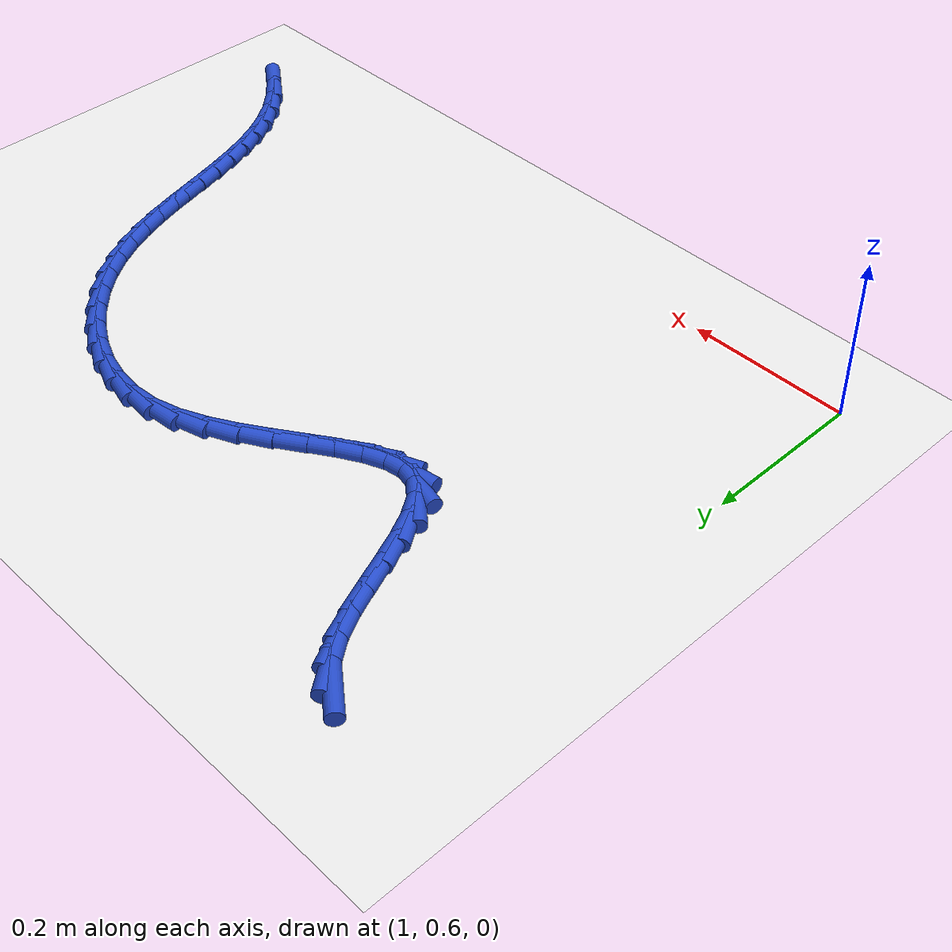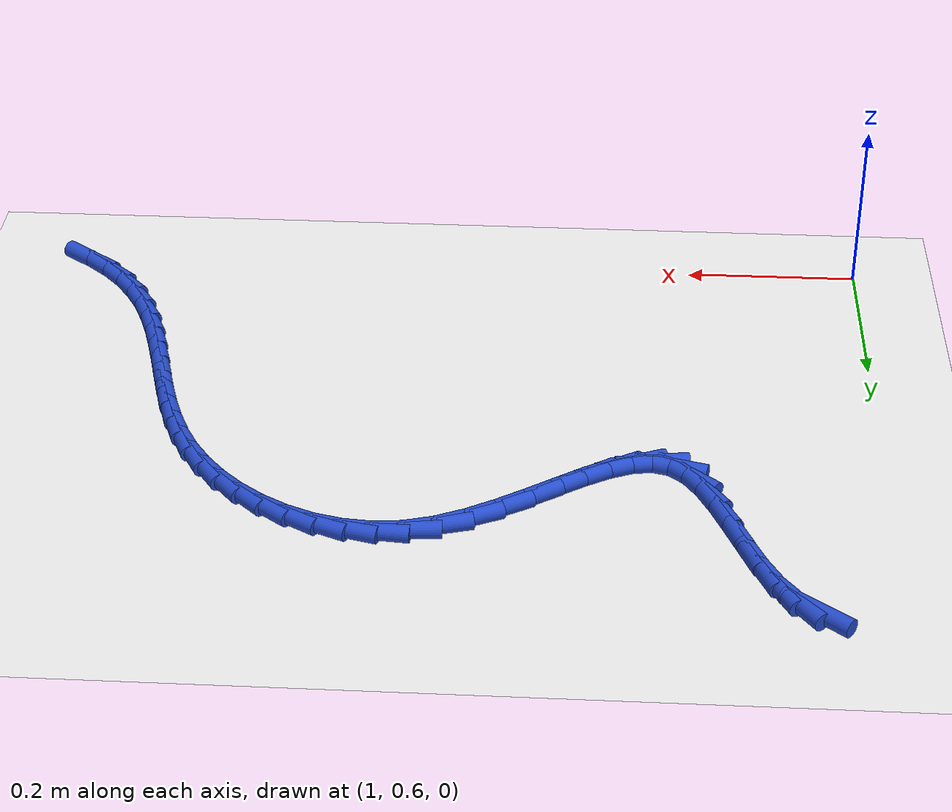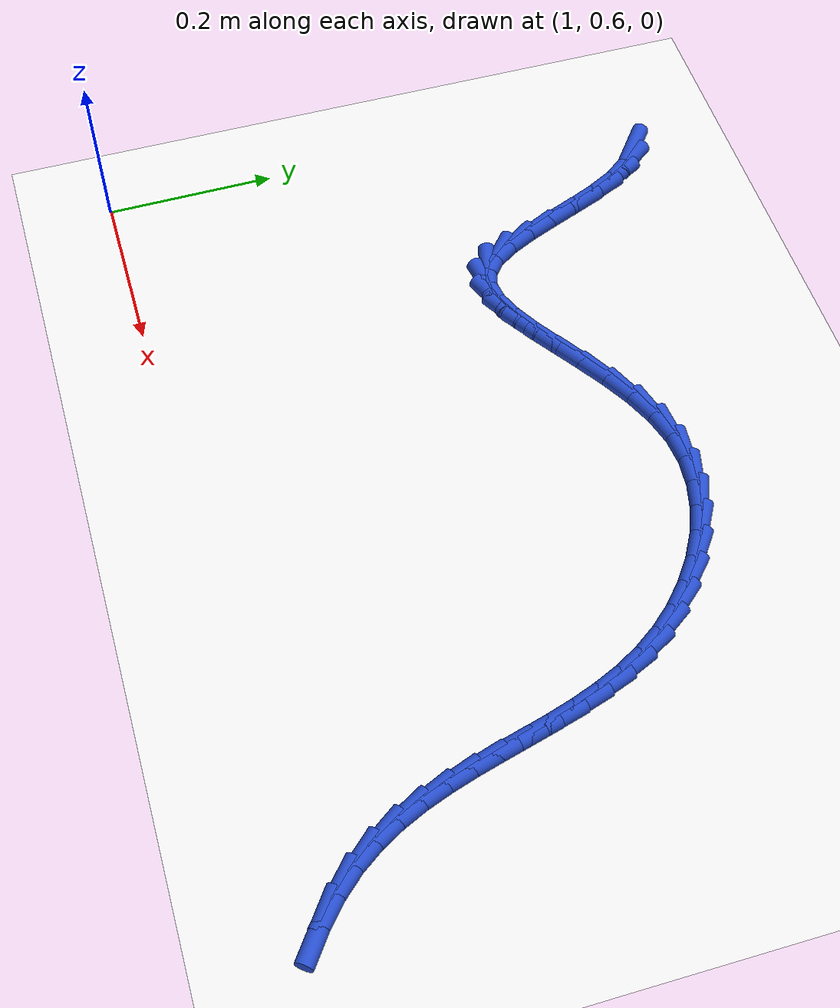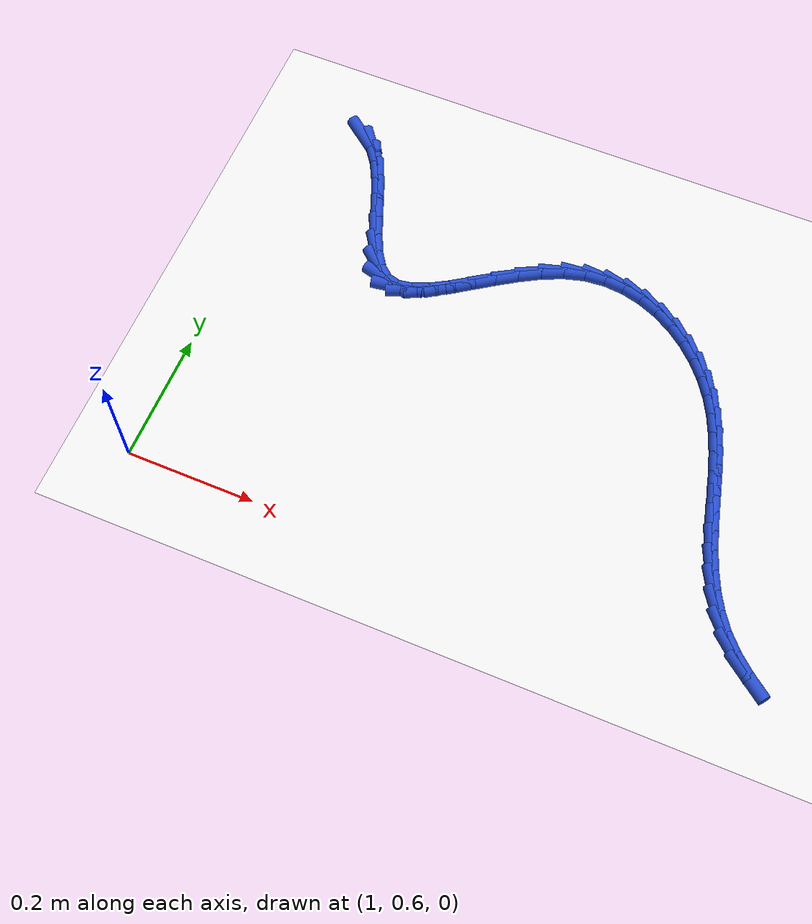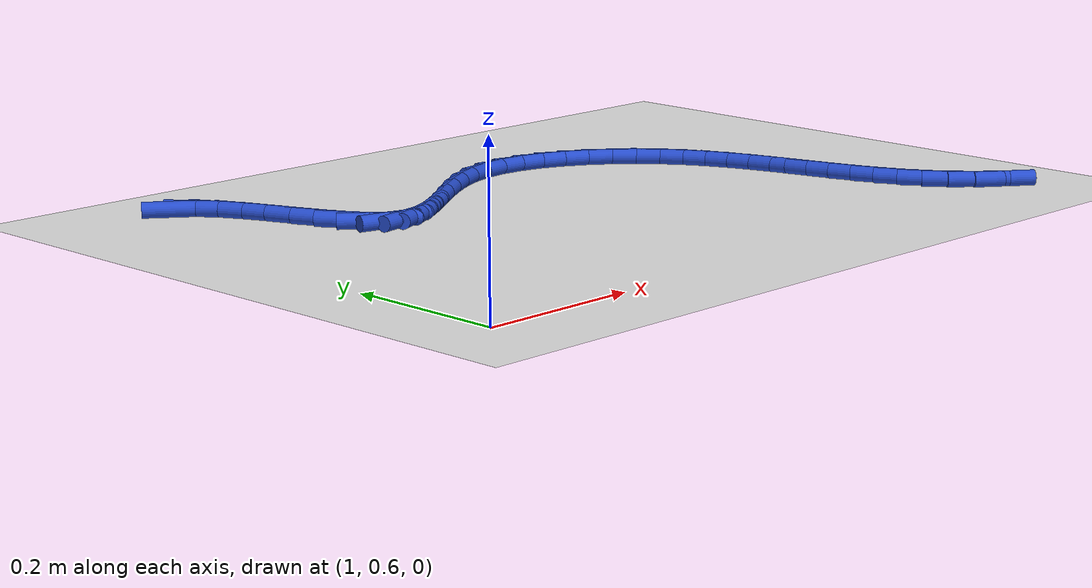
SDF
<sdf version="1.6">
 <world name="default">
  <model name="ground_plane">
   <static>1</static>
   <link name="link">
    <collision name="collision">
     <geometry><plane><normal>0 0 1</normal><size>100 100</size></plane></geometry>
     <surface><friction><ode><mu>100</mu><mu2>50</mu2></ode></friction></surface>
    </collision>
    <visual name="visual">
     <cast_shadows>0</cast_shadows>
     <geometry><plane><normal>0 0 1</normal><size>100 100</size></plane></geometry>
     <material>
      <script><uri>file://media/materials/scripts/gazebo.material</uri><name>Gazebo/WhiteGlow</name></script>
     </material>
    </visual>
   </link>
  </model>
  <model name="line">
   <link name="link_64">
    <pose>1.0909036064680755 1.2418583166483983 0.01 0 1.57 -0.6586504195495102</pose>
    <collision name="collision">
     <geometry><cylinder><radius>0.01</radius><length>0.08</length></cylinder></geometry>
    </collision>
    <visual name="visual">
     <material>
      <script><name>Gazebo/Blue</name><uri>file://media/materials/scripts/gazebo.material</uri></script>
     </material>
     <geometry><cylinder><radius>0.01</radius><length>0.08</length></cylinder></geometry>
    </visual>
   </link>
   <link name="link_65">
    <pose>1.1108935729754001 1.2263871882364186 0.01 0 1.57 -0.9339067698570097</pose>
    <collision name="collision">
     <geometry><cylinder><radius>0.01</radius><length>0.08</length></cylinder></geometry>
    </collision>
    <visual name="visual">
     <material>
      <script><name>Gazebo/Blue</name><uri>file://media/materials/scripts/gazebo.material</uri></script>
     </material>
     <geometry><cylinder><radius>0.01</radius><length>0.08</length></cylinder></geometry>
    </visual>
   </link>
   <link name="link_66">
    <pose>1.1281477401653455 1.2030619289553244 0.01 0 1.57 -1.0874279280124797</pose>
    <collision name="collision">
     <geometry><cylinder><radius>0.01</radius><length>0.08</length></cylinder></geometry>
    </collision>
    <visual name="visual">
     <material>
      <script><name>Gazebo/Blue</name><uri>file://media/materials/scripts/gazebo.material</uri></script>
     </material>
     <geometry><cylinder><radius>0.01</radius><length>0.08</length></cylinder></geometry>
    </visual>
   </link>
   <link name="link_67">
    <pose>1.1433403215445055 1.174118151079531 0.01 0 1.57 -1.1662053593688466</pose>
    <collision name="collision">
     <geometry><cylinder><radius>0.01</radius><length>0.08</length></cylinder></geometry>
    </collision>
    <visual name="visual">
     <material>
      <script><name>Gazebo/Blue</name><uri>file://media/materials/scripts/gazebo.material</uri></script>
     </material>
     <geometry><cylinder><radius>0.01</radius><length>0.08</length></cylinder></geometry>
    </visual>
   </link>
   <link name="link_68">
    <pose>1.1571634253390457 1.1418374257889317 0.01 0 1.57 -1.1951793816552505</pose>
    <collision name="collision">
     <geometry><cylinder><radius>0.01</radius><length>0.08</length></cylinder></geometry>
    </collision>
    <visual name="visual">
     <material>
      <script><name>Gazebo/Blue</name><uri>file://media/materials/scripts/gazebo.material</uri></script>
     </material>
     <geometry><cylinder><radius>0.01</radius><length>0.08</length></cylinder></geometry>
    </visual>
   </link>
   <link name="link_69">
    <pose>1.1703091597751303 1.1085013242634187 0.01 0 1.57 -1.181821434320776</pose>
    <collision name="collision">
     <geometry><cylinder><radius>0.01</radius><length>0.08</length></cylinder></geometry>
    </collision>
    <visual name="visual">
     <material>
      <script><name>Gazebo/Blue</name><uri>file://media/materials/scripts/gazebo.material</uri></script>
     </material>
     <geometry><cylinder><radius>0.01</radius><length>0.08</length></cylinder></geometry>
    </visual>
   </link>
   <link name="link_70">
    <pose>1.1834696330789247 1.0763914176828862 0.01 0 1.57 -1.1193541073777358</pose>
    <collision name="collision">
     <geometry><cylinder><radius>0.01</radius><length>0.08</length></cylinder></geometry>
    </collision>
    <visual name="visual">
     <material>
      <script><name>Gazebo/Blue</name><uri>file://media/materials/scripts/gazebo.material</uri></script>
     </material>
     <geometry><cylinder><radius>0.01</radius><length>0.08</length></cylinder></geometry>
    </visual>
   </link>
   <link name="link_71">
    <pose>1.1973369534765932 1.0477892772272264 0.01 0 1.57 -0.9810435060835496</pose>
    <collision name="collision">
     <geometry><cylinder><radius>0.01</radius><length>0.08</length></cylinder></geometry>
    </collision>
    <visual name="visual">
     <material>
      <script><name>Gazebo/Blue</name><uri>file://media/materials/scripts/gazebo.material</uri></script>
     </material>
     <geometry><cylinder><radius>0.01</radius><length>0.08</length></cylinder></geometry>
    </visual>
   </link>
   <link name="link_72">
    <pose>1.212603229194301 1.0249764740763325 0.01 0 1.57 -0.7040978147836128</pose>
    <collision name="collision">
     <geometry><cylinder><radius>0.01</radius><length>0.08</length></cylinder></geometry>
    </collision>
    <visual name="visual">
     <material>
      <script><name>Gazebo/Blue</name><uri>file://media/materials/scripts/gazebo.material</uri></script>
     </material>
     <geometry><cylinder><radius>0.01</radius><length>0.08</length></cylinder></geometry>
    </visual>
   </link>
   <link name="link_73">
    <pose>1.229960568333488 1.0102345788926677 0.01 0 1.57 -0.24901573664078291</pose>
    <collision name="collision">
     <geometry><cylinder><radius>0.01</radius><length>0.08</length></cylinder></geometry>
    </collision>
    <visual name="visual">
     <material>
      <script><name>Gazebo/Blue</name><uri>file://media/materials/scripts/gazebo.material</uri></script>
     </material>
     <geometry><cylinder><radius>0.01</radius><length>0.08</length></cylinder></geometry>
    </visual>
   </link>
   <link name="link_74">
    <pose>1.2499347809216996 1.0051552615206778 0.01 0 1.57 0.15409708749278433</pose>
    <collision name="collision">
     <geometry><cylinder><radius>0.01</radius><length>0.08</length></cylinder></geometry>
    </collision>
    <visual name="visual">
     <material>
      <script><name>Gazebo/Blue</name><uri>file://media/materials/scripts/gazebo.material</uri></script>
     </material>
     <geometry><cylinder><radius>0.01</radius><length>0.08</length></cylinder></geometry>
    </visual>
   </link>
   <link name="link_75">
    <pose>1.2724045308121492 1.0086454543055114 0.01 0 1.57 0.3957433033059598</pose>
    <collision name="collision">
     <geometry><cylinder><radius>0.01</radius><length>0.08</length></cylinder></geometry>
    </collision>
    <visual name="visual">
     <material>
      <script><name>Gazebo/Blue</name><uri>file://media/materials/scripts/gazebo.material</uri></script>
     </material>
     <geometry><cylinder><radius>0.01</radius><length>0.08</length></cylinder></geometry>
    </visual>
   </link>
   <link name="link_76">
    <pose>1.2970910851040345 1.018959116609497 0.01 0 1.57 0.524143859981627</pose>
    <collision name="collision">
     <geometry><cylinder><radius>0.01</radius><length>0.08</length></cylinder></geometry>
    </collision>
    <visual name="visual">
     <material>
      <script><name>Gazebo/Blue</name><uri>file://media/materials/scripts/gazebo.material</uri></script>
     </material>
     <geometry><cylinder><radius>0.01</radius><length>0.08</length></cylinder></geometry>
    </visual>
   </link>
   <link name="link_77">
    <pose>1.3237157108965545 1.0343502077949627 0.01 0 1.57 0.5847278744060506</pose>
    <collision name="collision">
     <geometry><cylinder><radius>0.01</radius><length>0.08</length></cylinder></geometry>
    </collision>
    <visual name="visual">
     <material>
      <script><name>Gazebo/Blue</name><uri>file://media/materials/scripts/gazebo.material</uri></script>
     </material>
     <geometry><cylinder><radius>0.01</radius><length>0.08</length></cylinder></geometry>
    </visual>
   </link>
   <link name="link_78">
    <pose>1.3519996752889067 1.0530726872242382 0.01 0 1.57 0.6003031076162122</pose>
    <collision name="collision">
     <geometry><cylinder><radius>0.01</radius><length>0.08</length></cylinder></geometry>
    </collision>
    <visual name="visual">
     <material>
      <script><name>Gazebo/Blue</name><uri>file://media/materials/scripts/gazebo.material</uri></script>
     </material>
     <geometry><cylinder><radius>0.01</radius><length>0.08</length></cylinder></geometry>
    </visual>
   </link>
   <link name="link_79">
    <pose>1.3816642453802892 1.073380514259651 0.01 0 1.57 0.5797709909957547</pose>
    <collision name="collision">
     <geometry><cylinder><radius>0.01</radius><length>0.08</length></cylinder></geometry>
    </collision>
    <visual name="visual">
     <material>
      <script><name>Gazebo/Blue</name><uri>file://media/materials/scripts/gazebo.material</uri></script>
     </material>
     <geometry><cylinder><radius>0.01</radius><length>0.08</length></cylinder></geometry>
    </visual>
   </link>
   <link name="link_80">
    <pose>1.4124306882699007 1.0935276482635312 0.01 0 1.57 0.523649729401626</pose>
    <collision name="collision">
     <geometry><cylinder><radius>0.01</radius><length>0.08</length></cylinder></geometry>
    </collision>
    <visual name="visual">
     <material>
      <script><name>Gazebo/Blue</name><uri>file://media/materials/scripts/gazebo.material</uri></script>
     </material>
     <geometry><cylinder><radius>0.01</radius><length>0.08</length></cylinder></geometry>
    </visual>
   </link>
   <link name="link_81">
    <pose>1.4440202710569392 1.1117680485982067 0.01 0 1.57 0.4261442454980627</pose>
    <collision name="collision">
     <geometry><cylinder><radius>0.01</radius><length>0.08</length></cylinder></geometry>
    </collision>
    <visual name="visual">
     <material>
      <script><name>Gazebo/Blue</name><uri>file://media/materials/scripts/gazebo.material</uri></script>
     </material>
     <geometry><cylinder><radius>0.01</radius><length>0.08</length></cylinder></geometry>
    </visual>
   </link>
   <link name="link_82">
    <pose>1.4761542608406026 1.1263556746260064 0.01 0 1.57 0.27692197553769354</pose>
    <collision name="collision">
     <geometry><cylinder><radius>0.01</radius><length>0.08</length></cylinder></geometry>
    </collision>
    <visual name="visual">
     <material>
      <script><name>Gazebo/Blue</name><uri>file://media/materials/scripts/gazebo.material</uri></script>
     </material>
     <geometry><cylinder><radius>0.01</radius><length>0.08</length></cylinder></geometry>
    </visual>
   </link>
   <link name="link_83">
    <pose>1.5085529504760595 1.135564183235079 0.01 0 1.57 0.09326714842904245</pose>
    <collision name="collision">
     <geometry><cylinder><radius>0.01</radius><length>0.08</length></cylinder></geometry>
    </collision>
    <visual name="visual">
     <material>
      <script><name>Gazebo/Blue</name><uri>file://media/materials/scripts/gazebo.material</uri></script>
     </material>
     <geometry><cylinder><radius>0.01</radius><length>0.08</length></cylinder></geometry>
    </visual>
   </link>
   <link name="link_84">
    <pose>1.5408910399275777 1.1385890405513708 0.01 0 1.57 -0.08343687490138052</pose>
    <collision name="collision">
     <geometry><cylinder><radius>0.01</radius><length>0.08</length></cylinder></geometry>
    </collision>
    <visual name="visual">
     <material>
      <script><name>Gazebo/Blue</name><uri>file://media/materials/scripts/gazebo.material</uri></script>
     </material>
     <geometry><cylinder><radius>0.01</radius><length>0.08</length></cylinder></geometry>
    </visual>
   </link>
   <link name="link_85">
    <pose>1.572779104178677 1.135922208677593 0.01 0 1.57 -0.2452281939316344</pose>
    <collision name="collision">
     <geometry><cylinder><radius>0.01</radius><length>0.08</length></cylinder></geometry>
    </collision>
    <visual name="visual">
     <material>
      <script><name>Gazebo/Blue</name><uri>file://media/materials/scripts/gazebo.material</uri></script>
     </material>
     <geometry><cylinder><radius>0.01</radius><length>0.08</length></cylinder></geometry>
    </visual>
   </link>
   <link name="link_86">
    <pose>1.6038229018506722 1.1281530282131438 0.01 0 1.57 -0.390877307131386</pose>
    <collision name="collision">
     <geometry><cylinder><radius>0.01</radius><length>0.08</length></cylinder></geometry>
    </collision>
    <visual name="visual">
     <material>
      <script><name>Gazebo/Blue</name><uri>file://media/materials/scripts/gazebo.material</uri></script>
     </material>
     <geometry><cylinder><radius>0.01</radius><length>0.08</length></cylinder></geometry>
    </visual>
   </link>
   <link name="link_87">
    <pose>1.633628191564875 1.115870839757421 0.01 0 1.57 -0.5220115262664327</pose>
    <collision name="collision">
     <geometry><cylinder><radius>0.01</radius><length>0.08</length></cylinder></geometry>
    </collision>
    <visual name="visual">
     <material>
      <script><name>Gazebo/Blue</name><uri>file://media/materials/scripts/gazebo.material</uri></script>
     </material>
     <geometry><cylinder><radius>0.01</radius><length>0.08</length></cylinder></geometry>
    </visual>
   </link>
   <link name="link_88">
    <pose>1.661800731942599 1.0996649839098245 0.01 0 1.57 -0.6418104622183876</pose>
    <collision name="collision">
     <geometry><cylinder><radius>0.01</radius><length>0.08</length></cylinder></geometry>
    </collision>
    <visual name="visual">
     <material>
      <script><name>Gazebo/Blue</name><uri>file://media/materials/scripts/gazebo.material</uri></script>
     </material>
     <geometry><cylinder><radius>0.01</radius><length>0.08</length></cylinder></geometry>
    </visual>
   </link>
   <link name="link_89">
    <pose>1.6879462816051585 1.0801248012697517 0.01 0 1.57 -0.7541289672191414</pose>
    <collision name="collision">
     <geometry><cylinder><radius>0.01</radius><length>0.08</length></cylinder></geometry>
    </collision>
    <visual name="visual">
     <material>
      <script><name>Gazebo/Blue</name><uri>file://media/materials/scripts/gazebo.material</uri></script>
     </material>
     <geometry><cylinder><radius>0.01</radius><length>0.08</length></cylinder></geometry>
    </visual>
   </link>
   <link name="link_90">
    <pose>1.7116705991738663 1.0578396324366015 0.01 0 1.57 -0.8631243238378926</pose>
    <collision name="collision">
     <geometry><cylinder><radius>0.01</radius><length>0.08</length></cylinder></geometry>
    </collision>
    <visual name="visual">
     <material>
      <script><name>Gazebo/Blue</name><uri>file://media/materials/scripts/gazebo.material</uri></script>
     </material>
     <geometry><cylinder><radius>0.01</radius><length>0.08</length></cylinder></geometry>
    </visual>
   </link>
   <link name="link_91">
    <pose>1.7325794432700363 1.0333988180097728 0.01 0 1.57 -0.9725801678028918</pose>
    <collision name="collision">
     <geometry><cylinder><radius>0.01</radius><length>0.08</length></cylinder></geometry>
    </collision>
    <visual name="visual">
     <material>
      <script><name>Gazebo/Blue</name><uri>file://media/materials/scripts/gazebo.material</uri></script>
     </material>
     <geometry><cylinder><radius>0.01</radius><length>0.08</length></cylinder></geometry>
    </visual>
   </link>
   <link name="link_92">
    <pose>1.7503127276946968 1.0073786687721302 0.01 0 1.57 -1.0753764190749566</pose>
    <collision name="collision">
     <geometry><cylinder><radius>0.01</radius><length>0.08</length></cylinder></geometry>
    </collision>
    <visual name="visual">
     <material>
      <script><name>Gazebo/Blue</name><uri>file://media/materials/scripts/gazebo.material</uri></script>
     </material>
     <geometry><cylinder><radius>0.01</radius><length>0.08</length></cylinder></geometry>
    </visual>
   </link>
   <link name="link_93">
    <pose>1.765020385625667 0.9801609288562344 0.01 0 1.57 -1.161549714665359</pose>
    <collision name="collision">
     <geometry><cylinder><radius>0.01</radius><length>0.08</length></cylinder></geometry>
    </collision>
    <visual name="visual">
     <material>
      <script><name>Gazebo/Blue</name><uri>file://media/materials/scripts/gazebo.material</uri></script>
     </material>
     <geometry><cylinder><radius>0.01</radius><length>0.08</length></cylinder></geometry>
    </visual>
   </link>
   <link name="link_94">
    <pose>1.7772444312501554 0.9519777679037197 0.01 0 1.57 -1.2288816464680574</pose>
    <collision name="collision">
     <geometry><cylinder><radius>0.01</radius><length>0.08</length></cylinder></geometry>
    </collision>
    <visual name="visual">
     <material>
      <script><name>Gazebo/Blue</name><uri>file://media/materials/scripts/gazebo.material</uri></script>
     </material>
     <geometry><cylinder><radius>0.01</radius><length>0.08</length></cylinder></geometry>
    </visual>
   </link>
   <link name="link_95">
    <pose>1.7875369337066558 0.9230575197055066 0.01 0 1.57 -1.2767127381516896</pose>
    <collision name="collision">
     <geometry><cylinder><radius>0.01</radius><length>0.08</length></cylinder></geometry>
    </collision>
    <visual name="visual">
     <material>
      <script><name>Gazebo/Blue</name><uri>file://media/materials/scripts/gazebo.material</uri></script>
     </material>
     <geometry><cylinder><radius>0.01</radius><length>0.08</length></cylinder></geometry>
    </visual>
   </link>
   <link name="link_96">
    <pose>1.7964499621336631 0.8936285180525148 0.01 0 1.57 -1.3050752545958397</pose>
    <collision name="collision">
     <geometry><cylinder><radius>0.01</radius><length>0.08</length></cylinder></geometry>
    </collision>
    <visual name="visual">
     <material>
      <script><name>Gazebo/Blue</name><uri>file://media/materials/scripts/gazebo.material</uri></script>
     </material>
     <geometry><cylinder><radius>0.01</radius><length>0.08</length></cylinder></geometry>
    </visual>
   </link>
   <link name="link_97">
    <pose>1.8045355856696736 0.8639190967356649 0.01 0 1.57 -1.314154256677526</pose>
    <collision name="collision">
     <geometry><cylinder><radius>0.01</radius><length>0.08</length></cylinder></geometry>
    </collision>
    <visual name="visual">
     <material>
      <script><name>Gazebo/Blue</name><uri>file://media/materials/scripts/gazebo.material</uri></script>
     </material>
     <geometry><cylinder><radius>0.01</radius><length>0.08</length></cylinder></geometry>
    </visual>
   </link>
   <link name="link_98">
    <pose>1.8123458734531825 0.8341575895458769 0.01 0 1.57 -1.3039681962840481</pose>
    <collision name="collision">
     <geometry><cylinder><radius>0.01</radius><length>0.08</length></cylinder></geometry>
    </collision>
    <visual name="visual">
     <material>
      <script><name>Gazebo/Blue</name><uri>file://media/materials/scripts/gazebo.material</uri></script>
     </material>
     <geometry><cylinder><radius>0.01</radius><length>0.08</length></cylinder></geometry>
    </visual>
   </link>
   <link name="link_99">
    <pose>1.8204328946226833 0.8045723302740706 0.01 0 1.57 -1.2742660153242598</pose>
    <collision name="collision">
     <geometry><cylinder><radius>0.01</radius><length>0.08</length></cylinder></geometry>
    </collision>
    <visual name="visual">
     <material>
      <script><name>Gazebo/Blue</name><uri>file://media/materials/scripts/gazebo.material</uri></script>
     </material>
     <geometry><cylinder><radius>0.01</radius><length>0.08</length></cylinder></geometry>
    </visual>
   </link>
   <link name="link_100">
    <pose>1.829348718316672 0.7753916527111664 0.01 0 1.57 -1.2246361493935607</pose>
    <collision name="collision">
     <geometry><cylinder><radius>0.01</radius><length>0.08</length></cylinder></geometry>
    </collision>
    <visual name="visual">
     <material>
      <script><name>Gazebo/Blue</name><uri>file://media/materials/scripts/gazebo.material</uri></script>
     </material>
     <geometry><cylinder><radius>0.01</radius><length>0.08</length></cylinder></geometry>
    </visual>
   </link>
   <link name="link_101">
    <pose>1.8396454136736438 0.7468438906480845 0.01 0 1.57 -1.154850866589294</pose>
    <collision name="collision">
     <geometry><cylinder><radius>0.01</radius><length>0.08</length></cylinder></geometry>
    </collision>
    <visual name="visual">
     <material>
      <script><name>Gazebo/Blue</name><uri>file://media/materials/scripts/gazebo.material</uri></script>
     </material>
     <geometry><cylinder><radius>0.01</radius><length>0.08</length></cylinder></geometry>
    </visual>
   </link>
   <link name="link_102">
    <pose>1.8518750498320933 0.7191573778757452 0.01 0 1.57 -1.0654643690373689</pose>
    <collision name="collision">
     <geometry><cylinder><radius>0.01</radius><length>0.08</length></cylinder></geometry>
    </collision>
    <visual name="visual">
     <material>
      <script><name>Gazebo/Blue</name><uri>file://media/materials/scripts/gazebo.material</uri></script>
     </material>
     <geometry><cylinder><radius>0.01</radius><length>0.08</length></cylinder></geometry>
    </visual>
   </link>
   <link name="link_103">
    <pose>1.8665896959305157 0.6925604481850681 0.01 0 1.57 -0.9585741196715826</pose>
    <collision name="collision">
     <geometry><cylinder><radius>0.01</radius><length>0.08</length></cylinder></geometry>
    </collision>
    <visual name="visual">
     <material>
      <script><name>Gazebo/Blue</name><uri>file://media/materials/scripts/gazebo.material</uri></script>
     </material>
     <geometry><cylinder><radius>0.01</radius><length>0.08</length></cylinder></geometry>
    </visual>
   </link>
   <link name="link_104">
    <pose>1.8843414211074063 0.6672814353669737 0.01 0 1.57 -0.8384939896134357</pose>
    <collision name="collision">
     <geometry><cylinder><radius>0.01</radius><length>0.08</length></cylinder></geometry>
    </collision>
    <visual name="visual">
     <material>
      <script><name>Gazebo/Blue</name><uri>file://media/materials/scripts/gazebo.material</uri></script>
     </material>
     <geometry><cylinder><radius>0.01</radius><length>0.08</length></cylinder></geometry>
    </visual>
   </link>
   <link name="link_105">
    <pose>1.9056796929639734 0.6435477809270529 0.01 0 1.57 -0.7237843148560372</pose>
    <collision name="collision">
     <geometry><cylinder><radius>0.01</radius><length>0.08</length></cylinder></geometry>
    </collision>
    <visual name="visual">
     <material>
      <script><name>Gazebo/Blue</name><uri>file://media/materials/scripts/gazebo.material</uri></script>
     </material>
     <geometry><cylinder><radius>0.01</radius><length>0.08</length></cylinder></geometry>
    </visual>
   </link>
   <link name="link_106">
    <pose>1.9307032397969992 0.6214323300593669 0.01 0 1.57 -0.640464811472915</pose>
    <collision name="collision">
     <geometry><cylinder><radius>0.01</radius><length>0.08</length></cylinder></geometry>
    </collision>
    <visual name="visual">
     <material>
      <script><name>Gazebo/Blue</name><uri>file://media/materials/scripts/gazebo.material</uri></script>
     </material>
     <geometry><cylinder><radius>0.01</radius><length>0.08</length></cylinder></geometry>
    </visual>
   </link>
  </model>
 </world>
</sdf>
